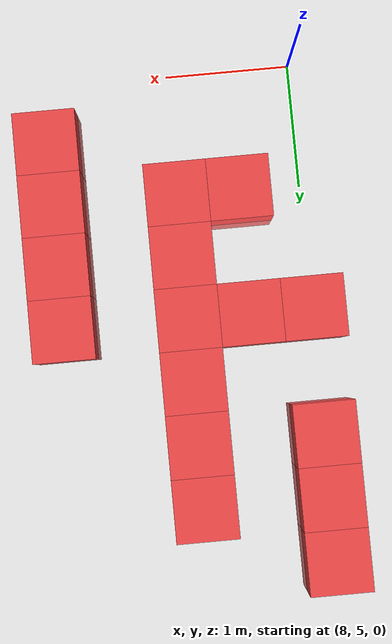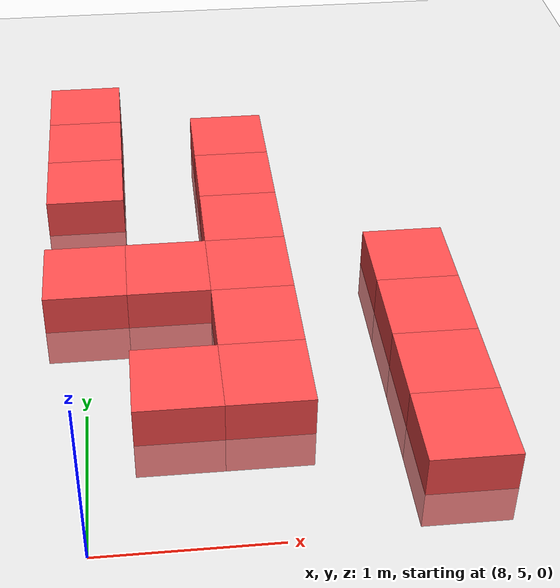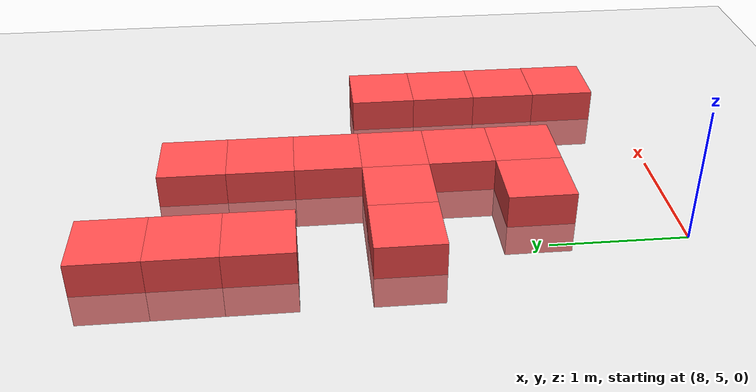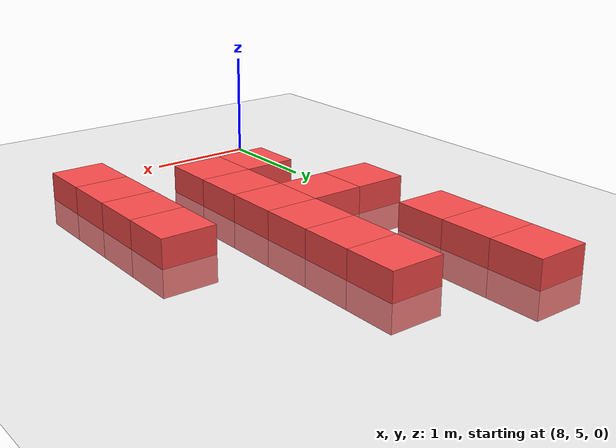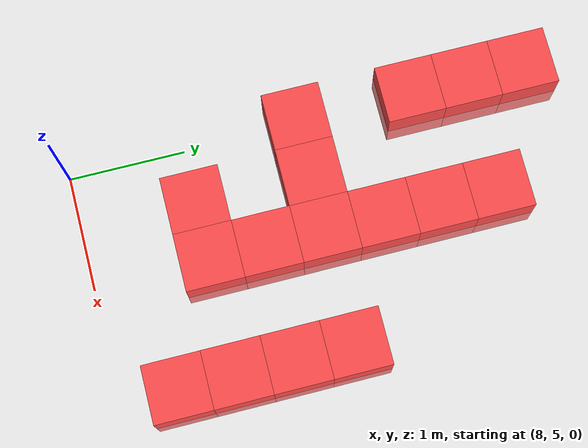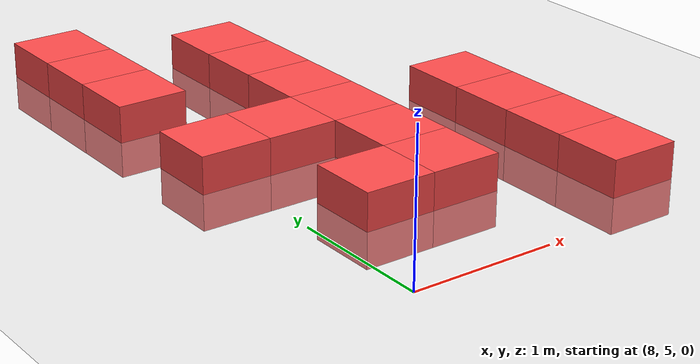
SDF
<sdf version="1.6">
 <world name="default">
  <model name="ground_plane">
   <static>1</static>
   <link name="link">
    <collision name="collision">
     <geometry><plane><normal>0 0 1</normal><size>100 100</size></plane></geometry>
     <surface><friction><ode><mu>100</mu><mu2>50</mu2></ode></friction></surface>
    </collision>
    <visual name="visual">
     <cast_shadows>0</cast_shadows>
     <geometry><plane><normal>0 0 1</normal><size>100 100</size></plane></geometry>
     <material>
      <script><uri>file://media/materials/scripts/gazebo.material</uri><name>Gazebo/Grey</name></script>
     </material>
    </visual>
   </link>
  </model>
  <model name="Box_Red_414">
   <link name="link_0">
    <inertial>
     <mass>1</mass>
     <inertia>
      <ixx>0.166667</ixx>
      <ixy>0</ixy>
      <ixz>0</ixz>
      <iyy>0.166667</iyy>
      <iyz>0</iyz>
      <izz>0.166667</izz>
     </inertia>
    </inertial>
    <visual name="visual">
     <geometry><box><size>0.5 0.5 0.5</size></box></geometry>
     <material>
      <lighting>1</lighting>
      <script><uri>file://media/materials/scripts/gazebo.material</uri><name>Gazebo/Grey</name></script>
      <ambient>1 0.3 0.3 1</ambient>
      <diffuse>0.7 0.7 0.7 1</diffuse>
      <specular>0.01 0.01 0.01 1</specular>
      <emissive>0 0 0 1</emissive>
      <shader type="vertex"><normal_map>__default__</normal_map></shader>
     </material>
    </visual>
    <collision name="collision">
     <geometry><box><size>0.5 0.5 0.5</size></box></geometry>
     <surface>
      <friction>
       <ode><mu>1</mu><mu2>1</mu2><fdir1>0 0 0</fdir1><slip1>0</slip1><slip2>0</slip2></ode>
       <torsional>
        <coefficient>1</coefficient>
        <patch_radius>0</patch_radius>
        <surface_radius>0</surface_radius>
        <use_patch_radius>1</use_patch_radius>
        <ode><slip>0</slip></ode>
       </torsional>
      </friction>
      <bounce><restitution_coefficient>0</restitution_coefficient><threshold>1e+06</threshold></bounce>
      <contact>
       <collide_without_contact>0</collide_without_contact>
       <collide_without_contact_bitmask>1</collide_without_contact_bitmask>
       <collide_bitmask>1</collide_bitmask>
       <ode>
        <soft_cfm>0</soft_cfm>
        <soft_erp>0.2</soft_erp>
        <kp>1e+13</kp>
        <kd>1</kd>
        <max_vel>0.01</max_vel>
        <min_depth>0</min_depth>
       </ode>
       <bullet>
        <split_impulse>1</split_impulse>
        <split_impulse_penetration_threshold>-0.01</split_impulse_penetration_threshold>
        <soft_cfm>0</soft_cfm>
        <soft_erp>0.2</soft_erp>
        <kp>1e+13</kp>
        <kd>1</kd>
       </bullet>
      </contact>
     </surface>
    </collision>
   </link>
   <static>0</static>
   <pose>8.000 7.000 0.000 0 0 0</pose>
  </model>
  <model name="Box_Red_416">
   <link name="link_0">
    <inertial>
     <mass>1</mass>
     <inertia>
      <ixx>0.166667</ixx>
      <ixy>0</ixy>
      <ixz>0</ixz>
      <iyy>0.166667</iyy>
      <iyz>0</iyz>
      <izz>0.166667</izz>
     </inertia>
    </inertial>
    <visual name="visual">
     <geometry><box><size>0.5 0.5 0.5</size></box></geometry>
     <material>
      <lighting>1</lighting>
      <script><uri>file://media/materials/scripts/gazebo.material</uri><name>Gazebo/Grey</name></script>
      <ambient>1 0.3 0.3 1</ambient>
      <diffuse>0.7 0.7 0.7 1</diffuse>
      <specular>0.01 0.01 0.01 1</specular>
      <emissive>0 0 0 1</emissive>
      <shader type="vertex"><normal_map>__default__</normal_map></shader>
     </material>
    </visual>
    <collision name="collision">
     <geometry><box><size>0.5 0.5 0.5</size></box></geometry>
     <surface>
      <friction>
       <ode><mu>1</mu><mu2>1</mu2><fdir1>0 0 0</fdir1><slip1>0</slip1><slip2>0</slip2></ode>
       <torsional>
        <coefficient>1</coefficient>
        <patch_radius>0</patch_radius>
        <surface_radius>0</surface_radius>
        <use_patch_radius>1</use_patch_radius>
        <ode><slip>0</slip></ode>
       </torsional>
      </friction>
      <bounce><restitution_coefficient>0</restitution_coefficient><threshold>1e+06</threshold></bounce>
      <contact>
       <collide_without_contact>0</collide_without_contact>
       <collide_without_contact_bitmask>1</collide_without_contact_bitmask>
       <collide_bitmask>1</collide_bitmask>
       <ode>
        <soft_cfm>0</soft_cfm>
        <soft_erp>0.2</soft_erp>
        <kp>1e+13</kp>
        <kd>1</kd>
        <max_vel>0.01</max_vel>
        <min_depth>0</min_depth>
       </ode>
       <bullet>
        <split_impulse>1</split_impulse>
        <split_impulse_penetration_threshold>-0.01</split_impulse_penetration_threshold>
        <soft_cfm>0</soft_cfm>
        <soft_erp>0.2</soft_erp>
        <kp>1e+13</kp>
        <kd>1</kd>
       </bullet>
      </contact>
     </surface>
    </collision>
   </link>
   <static>0</static>
   <pose>8.000 8.000 0.000 0 0 0</pose>
  </model>
  <model name="Box_Red_417">
   <link name="link_0">
    <inertial>
     <mass>1</mass>
     <inertia>
      <ixx>0.166667</ixx>
      <ixy>0</ixy>
      <ixz>0</ixz>
      <iyy>0.166667</iyy>
      <iyz>0</iyz>
      <izz>0.166667</izz>
     </inertia>
    </inertial>
    <visual name="visual">
     <geometry><box><size>0.5 0.5 0.5</size></box></geometry>
     <material>
      <lighting>1</lighting>
      <script><uri>file://media/materials/scripts/gazebo.material</uri><name>Gazebo/Grey</name></script>
      <ambient>1 0.3 0.3 1</ambient>
      <diffuse>0.7 0.7 0.7 1</diffuse>
      <specular>0.01 0.01 0.01 1</specular>
      <emissive>0 0 0 1</emissive>
      <shader type="vertex"><normal_map>__default__</normal_map></shader>
     </material>
    </visual>
    <collision name="collision">
     <geometry><box><size>0.5 0.5 0.5</size></box></geometry>
     <surface>
      <friction>
       <ode><mu>1</mu><mu2>1</mu2><fdir1>0 0 0</fdir1><slip1>0</slip1><slip2>0</slip2></ode>
       <torsional>
        <coefficient>1</coefficient>
        <patch_radius>0</patch_radius>
        <surface_radius>0</surface_radius>
        <use_patch_radius>1</use_patch_radius>
        <ode><slip>0</slip></ode>
       </torsional>
      </friction>
      <bounce><restitution_coefficient>0</restitution_coefficient><threshold>1e+06</threshold></bounce>
      <contact>
       <collide_without_contact>0</collide_without_contact>
       <collide_without_contact_bitmask>1</collide_without_contact_bitmask>
       <collide_bitmask>1</collide_bitmask>
       <ode>
        <soft_cfm>0</soft_cfm>
        <soft_erp>0.2</soft_erp>
        <kp>1e+13</kp>
        <kd>1</kd>
        <max_vel>0.01</max_vel>
        <min_depth>0</min_depth>
       </ode>
       <bullet>
        <split_impulse>1</split_impulse>
        <split_impulse_penetration_threshold>-0.01</split_impulse_penetration_threshold>
        <soft_cfm>0</soft_cfm>
        <soft_erp>0.2</soft_erp>
        <kp>1e+13</kp>
        <kd>1</kd>
       </bullet>
      </contact>
     </surface>
    </collision>
   </link>
   <static>0</static>
   <pose>8.000 8.500 0.000 0 0 0</pose>
  </model>
  <model name="Box_Red_418">
   <link name="link_0">
    <inertial>
     <mass>1</mass>
     <inertia>
      <ixx>0.166667</ixx>
      <ixy>0</ixy>
      <ixz>0</ixz>
      <iyy>0.166667</iyy>
      <iyz>0</iyz>
      <izz>0.166667</izz>
     </inertia>
    </inertial>
    <visual name="visual">
     <geometry><box><size>0.5 0.5 0.5</size></box></geometry>
     <material>
      <lighting>1</lighting>
      <script><uri>file://media/materials/scripts/gazebo.material</uri><name>Gazebo/Grey</name></script>
      <ambient>1 0.3 0.3 1</ambient>
      <diffuse>0.7 0.7 0.7 1</diffuse>
      <specular>0.01 0.01 0.01 1</specular>
      <emissive>0 0 0 1</emissive>
      <shader type="vertex"><normal_map>__default__</normal_map></shader>
     </material>
    </visual>
    <collision name="collision">
     <geometry><box><size>0.5 0.5 0.5</size></box></geometry>
     <surface>
      <friction>
       <ode><mu>1</mu><mu2>1</mu2><fdir1>0 0 0</fdir1><slip1>0</slip1><slip2>0</slip2></ode>
       <torsional>
        <coefficient>1</coefficient>
        <patch_radius>0</patch_radius>
        <surface_radius>0</surface_radius>
        <use_patch_radius>1</use_patch_radius>
        <ode><slip>0</slip></ode>
       </torsional>
      </friction>
      <bounce><restitution_coefficient>0</restitution_coefficient><threshold>1e+06</threshold></bounce>
      <contact>
       <collide_without_contact>0</collide_without_contact>
       <collide_without_contact_bitmask>1</collide_without_contact_bitmask>
       <collide_bitmask>1</collide_bitmask>
       <ode>
        <soft_cfm>0</soft_cfm>
        <soft_erp>0.2</soft_erp>
        <kp>1e+13</kp>
        <kd>1</kd>
        <max_vel>0.01</max_vel>
        <min_depth>0</min_depth>
       </ode>
       <bullet>
        <split_impulse>1</split_impulse>
        <split_impulse_penetration_threshold>-0.01</split_impulse_penetration_threshold>
        <soft_cfm>0</soft_cfm>
        <soft_erp>0.2</soft_erp>
        <kp>1e+13</kp>
        <kd>1</kd>
       </bullet>
      </contact>
     </surface>
    </collision>
   </link>
   <static>0</static>
   <pose>8.000 9.000 0.000 0 0 0</pose>
  </model>
  <model name="Box_Red_437">
   <link name="link_0">
    <inertial>
     <mass>1</mass>
     <inertia>
      <ixx>0.166667</ixx>
      <ixy>0</ixy>
      <ixz>0</ixz>
      <iyy>0.166667</iyy>
      <iyz>0</iyz>
      <izz>0.166667</izz>
     </inertia>
    </inertial>
    <visual name="visual">
     <geometry><box><size>0.5 0.5 0.5</size></box></geometry>
     <material>
      <lighting>1</lighting>
      <script><uri>file://media/materials/scripts/gazebo.material</uri><name>Gazebo/Grey</name></script>
      <ambient>1 0.3 0.3 1</ambient>
      <diffuse>0.7 0.7 0.7 1</diffuse>
      <specular>0.01 0.01 0.01 1</specular>
      <emissive>0 0 0 1</emissive>
      <shader type="vertex"><normal_map>__default__</normal_map></shader>
     </material>
    </visual>
    <collision name="collision">
     <geometry><box><size>0.5 0.5 0.5</size></box></geometry>
     <surface>
      <friction>
       <ode><mu>1</mu><mu2>1</mu2><fdir1>0 0 0</fdir1><slip1>0</slip1><slip2>0</slip2></ode>
       <torsional>
        <coefficient>1</coefficient>
        <patch_radius>0</patch_radius>
        <surface_radius>0</surface_radius>
        <use_patch_radius>1</use_patch_radius>
        <ode><slip>0</slip></ode>
       </torsional>
      </friction>
      <bounce><restitution_coefficient>0</restitution_coefficient><threshold>1e+06</threshold></bounce>
      <contact>
       <collide_without_contact>0</collide_without_contact>
       <collide_without_contact_bitmask>1</collide_without_contact_bitmask>
       <collide_bitmask>1</collide_bitmask>
       <ode>
        <soft_cfm>0</soft_cfm>
        <soft_erp>0.2</soft_erp>
        <kp>1e+13</kp>
        <kd>1</kd>
        <max_vel>0.01</max_vel>
        <min_depth>0</min_depth>
       </ode>
       <bullet>
        <split_impulse>1</split_impulse>
        <split_impulse_penetration_threshold>-0.01</split_impulse_penetration_threshold>
        <soft_cfm>0</soft_cfm>
        <soft_erp>0.2</soft_erp>
        <kp>1e+13</kp>
        <kd>1</kd>
       </bullet>
      </contact>
     </surface>
    </collision>
   </link>
   <static>0</static>
   <pose>8.500 6.000 0.000 0 0 0</pose>
  </model>
  <model name="Box_Red_439">
   <link name="link_0">
    <inertial>
     <mass>1</mass>
     <inertia>
      <ixx>0.166667</ixx>
      <ixy>0</ixy>
      <ixz>0</ixz>
      <iyy>0.166667</iyy>
      <iyz>0</iyz>
      <izz>0.166667</izz>
     </inertia>
    </inertial>
    <visual name="visual">
     <geometry><box><size>0.5 0.5 0.5</size></box></geometry>
     <material>
      <lighting>1</lighting>
      <script><uri>file://media/materials/scripts/gazebo.material</uri><name>Gazebo/Grey</name></script>
      <ambient>1 0.3 0.3 1</ambient>
      <diffuse>0.7 0.7 0.7 1</diffuse>
      <specular>0.01 0.01 0.01 1</specular>
      <emissive>0 0 0 1</emissive>
      <shader type="vertex"><normal_map>__default__</normal_map></shader>
     </material>
    </visual>
    <collision name="collision">
     <geometry><box><size>0.5 0.5 0.5</size></box></geometry>
     <surface>
      <friction>
       <ode><mu>1</mu><mu2>1</mu2><fdir1>0 0 0</fdir1><slip1>0</slip1><slip2>0</slip2></ode>
       <torsional>
        <coefficient>1</coefficient>
        <patch_radius>0</patch_radius>
        <surface_radius>0</surface_radius>
        <use_patch_radius>1</use_patch_radius>
        <ode><slip>0</slip></ode>
       </torsional>
      </friction>
      <bounce><restitution_coefficient>0</restitution_coefficient><threshold>1e+06</threshold></bounce>
      <contact>
       <collide_without_contact>0</collide_without_contact>
       <collide_without_contact_bitmask>1</collide_without_contact_bitmask>
       <collide_bitmask>1</collide_bitmask>
       <ode>
        <soft_cfm>0</soft_cfm>
        <soft_erp>0.2</soft_erp>
        <kp>1e+13</kp>
        <kd>1</kd>
        <max_vel>0.01</max_vel>
        <min_depth>0</min_depth>
       </ode>
       <bullet>
        <split_impulse>1</split_impulse>
        <split_impulse_penetration_threshold>-0.01</split_impulse_penetration_threshold>
        <soft_cfm>0</soft_cfm>
        <soft_erp>0.2</soft_erp>
        <kp>1e+13</kp>
        <kd>1</kd>
       </bullet>
      </contact>
     </surface>
    </collision>
   </link>
   <static>0</static>
   <pose>8.500 7.000 0.000 0 0 0</pose>
  </model>
  <model name="Box_Red_462">
   <link name="link_0">
    <inertial>
     <mass>1</mass>
     <inertia>
      <ixx>0.166667</ixx>
      <ixy>0</ixy>
      <ixz>0</ixz>
      <iyy>0.166667</iyy>
      <iyz>0</iyz>
      <izz>0.166667</izz>
     </inertia>
    </inertial>
    <visual name="visual">
     <geometry><box><size>0.5 0.5 0.5</size></box></geometry>
     <material>
      <lighting>1</lighting>
      <script><uri>file://media/materials/scripts/gazebo.material</uri><name>Gazebo/Grey</name></script>
      <ambient>1 0.3 0.3 1</ambient>
      <diffuse>0.7 0.7 0.7 1</diffuse>
      <specular>0.01 0.01 0.01 1</specular>
      <emissive>0 0 0 1</emissive>
      <shader type="vertex"><normal_map>__default__</normal_map></shader>
     </material>
    </visual>
    <collision name="collision">
     <geometry><box><size>0.5 0.5 0.5</size></box></geometry>
     <surface>
      <friction>
       <ode><mu>1</mu><mu2>1</mu2><fdir1>0 0 0</fdir1><slip1>0</slip1><slip2>0</slip2></ode>
       <torsional>
        <coefficient>1</coefficient>
        <patch_radius>0</patch_radius>
        <surface_radius>0</surface_radius>
        <use_patch_radius>1</use_patch_radius>
        <ode><slip>0</slip></ode>
       </torsional>
      </friction>
      <bounce><restitution_coefficient>0</restitution_coefficient><threshold>1e+06</threshold></bounce>
      <contact>
       <collide_without_contact>0</collide_without_contact>
       <collide_without_contact_bitmask>1</collide_without_contact_bitmask>
       <collide_bitmask>1</collide_bitmask>
       <ode>
        <soft_cfm>0</soft_cfm>
        <soft_erp>0.2</soft_erp>
        <kp>1e+13</kp>
        <kd>1</kd>
        <max_vel>0.01</max_vel>
        <min_depth>0</min_depth>
       </ode>
       <bullet>
        <split_impulse>1</split_impulse>
        <split_impulse_penetration_threshold>-0.01</split_impulse_penetration_threshold>
        <soft_cfm>0</soft_cfm>
        <soft_erp>0.2</soft_erp>
        <kp>1e+13</kp>
        <kd>1</kd>
       </bullet>
      </contact>
     </surface>
    </collision>
   </link>
   <static>0</static>
   <pose>9.000 6.000 0.000 0 0 0</pose>
  </model>
  <model name="Box_Red_463">
   <link name="link_0">
    <inertial>
     <mass>1</mass>
     <inertia>
      <ixx>0.166667</ixx>
      <ixy>0</ixy>
      <ixz>0</ixz>
      <iyy>0.166667</iyy>
      <iyz>0</iyz>
      <izz>0.166667</izz>
     </inertia>
    </inertial>
    <visual name="visual">
     <geometry><box><size>0.5 0.5 0.5</size></box></geometry>
     <material>
      <lighting>1</lighting>
      <script><uri>file://media/materials/scripts/gazebo.material</uri><name>Gazebo/Grey</name></script>
      <ambient>1 0.3 0.3 1</ambient>
      <diffuse>0.7 0.7 0.7 1</diffuse>
      <specular>0.01 0.01 0.01 1</specular>
      <emissive>0 0 0 1</emissive>
      <shader type="vertex"><normal_map>__default__</normal_map></shader>
     </material>
    </visual>
    <collision name="collision">
     <geometry><box><size>0.5 0.5 0.5</size></box></geometry>
     <surface>
      <friction>
       <ode><mu>1</mu><mu2>1</mu2><fdir1>0 0 0</fdir1><slip1>0</slip1><slip2>0</slip2></ode>
       <torsional>
        <coefficient>1</coefficient>
        <patch_radius>0</patch_radius>
        <surface_radius>0</surface_radius>
        <use_patch_radius>1</use_patch_radius>
        <ode><slip>0</slip></ode>
       </torsional>
      </friction>
      <bounce><restitution_coefficient>0</restitution_coefficient><threshold>1e+06</threshold></bounce>
      <contact>
       <collide_without_contact>0</collide_without_contact>
       <collide_without_contact_bitmask>1</collide_without_contact_bitmask>
       <collide_bitmask>1</collide_bitmask>
       <ode>
        <soft_cfm>0</soft_cfm>
        <soft_erp>0.2</soft_erp>
        <kp>1e+13</kp>
        <kd>1</kd>
        <max_vel>0.01</max_vel>
        <min_depth>0</min_depth>
       </ode>
       <bullet>
        <split_impulse>1</split_impulse>
        <split_impulse_penetration_threshold>-0.01</split_impulse_penetration_threshold>
        <soft_cfm>0</soft_cfm>
        <soft_erp>0.2</soft_erp>
        <kp>1e+13</kp>
        <kd>1</kd>
       </bullet>
      </contact>
     </surface>
    </collision>
   </link>
   <static>0</static>
   <pose>9.000 6.500 0.000 0 0 0</pose>
  </model>
  <model name="Box_Red_464">
   <link name="link_0">
    <inertial>
     <mass>1</mass>
     <inertia>
      <ixx>0.166667</ixx>
      <ixy>0</ixy>
      <ixz>0</ixz>
      <iyy>0.166667</iyy>
      <iyz>0</iyz>
      <izz>0.166667</izz>
     </inertia>
    </inertial>
    <visual name="visual">
     <geometry><box><size>0.5 0.5 0.5</size></box></geometry>
     <material>
      <lighting>1</lighting>
      <script><uri>file://media/materials/scripts/gazebo.material</uri><name>Gazebo/Grey</name></script>
      <ambient>1 0.3 0.3 1</ambient>
      <diffuse>0.7 0.7 0.7 1</diffuse>
      <specular>0.01 0.01 0.01 1</specular>
      <emissive>0 0 0 1</emissive>
      <shader type="vertex"><normal_map>__default__</normal_map></shader>
     </material>
    </visual>
    <collision name="collision">
     <geometry><box><size>0.5 0.5 0.5</size></box></geometry>
     <surface>
      <friction>
       <ode><mu>1</mu><mu2>1</mu2><fdir1>0 0 0</fdir1><slip1>0</slip1><slip2>0</slip2></ode>
       <torsional>
        <coefficient>1</coefficient>
        <patch_radius>0</patch_radius>
        <surface_radius>0</surface_radius>
        <use_patch_radius>1</use_patch_radius>
        <ode><slip>0</slip></ode>
       </torsional>
      </friction>
      <bounce><restitution_coefficient>0</restitution_coefficient><threshold>1e+06</threshold></bounce>
      <contact>
       <collide_without_contact>0</collide_without_contact>
       <collide_without_contact_bitmask>1</collide_without_contact_bitmask>
       <collide_bitmask>1</collide_bitmask>
       <ode>
        <soft_cfm>0</soft_cfm>
        <soft_erp>0.2</soft_erp>
        <kp>1e+13</kp>
        <kd>1</kd>
        <max_vel>0.01</max_vel>
        <min_depth>0</min_depth>
       </ode>
       <bullet>
        <split_impulse>1</split_impulse>
        <split_impulse_penetration_threshold>-0.01</split_impulse_penetration_threshold>
        <soft_cfm>0</soft_cfm>
        <soft_erp>0.2</soft_erp>
        <kp>1e+13</kp>
        <kd>1</kd>
       </bullet>
      </contact>
     </surface>
    </collision>
   </link>
   <static>0</static>
   <pose>9.000 7.000 0.000 0 0 0</pose>
  </model>
  <model name="Box_Red_465">
   <link name="link_0">
    <inertial>
     <mass>1</mass>
     <inertia>
      <ixx>0.166667</ixx>
      <ixy>0</ixy>
      <ixz>0</ixz>
      <iyy>0.166667</iyy>
      <iyz>0</iyz>
      <izz>0.166667</izz>
     </inertia>
    </inertial>
    <visual name="visual">
     <geometry><box><size>0.5 0.5 0.5</size></box></geometry>
     <material>
      <lighting>1</lighting>
      <script><uri>file://media/materials/scripts/gazebo.material</uri><name>Gazebo/Grey</name></script>
      <ambient>1 0.3 0.3 1</ambient>
      <diffuse>0.7 0.7 0.7 1</diffuse>
      <specular>0.01 0.01 0.01 1</specular>
      <emissive>0 0 0 1</emissive>
      <shader type="vertex"><normal_map>__default__</normal_map></shader>
     </material>
    </visual>
    <collision name="collision">
     <geometry><box><size>0.5 0.5 0.5</size></box></geometry>
     <surface>
      <friction>
       <ode><mu>1</mu><mu2>1</mu2><fdir1>0 0 0</fdir1><slip1>0</slip1><slip2>0</slip2></ode>
       <torsional>
        <coefficient>1</coefficient>
        <patch_radius>0</patch_radius>
        <surface_radius>0</surface_radius>
        <use_patch_radius>1</use_patch_radius>
        <ode><slip>0</slip></ode>
       </torsional>
      </friction>
      <bounce><restitution_coefficient>0</restitution_coefficient><threshold>1e+06</threshold></bounce>
      <contact>
       <collide_without_contact>0</collide_without_contact>
       <collide_without_contact_bitmask>1</collide_without_contact_bitmask>
       <collide_bitmask>1</collide_bitmask>
       <ode>
        <soft_cfm>0</soft_cfm>
        <soft_erp>0.2</soft_erp>
        <kp>1e+13</kp>
        <kd>1</kd>
        <max_vel>0.01</max_vel>
        <min_depth>0</min_depth>
       </ode>
       <bullet>
        <split_impulse>1</split_impulse>
        <split_impulse_penetration_threshold>-0.01</split_impulse_penetration_threshold>
        <soft_cfm>0</soft_cfm>
        <soft_erp>0.2</soft_erp>
        <kp>1e+13</kp>
        <kd>1</kd>
       </bullet>
      </contact>
     </surface>
    </collision>
   </link>
   <static>0</static>
   <pose>9.000 7.500 0.000 0 0 0</pose>
  </model>
  <model name="Box_Red_466">
   <link name="link_0">
    <inertial>
     <mass>1</mass>
     <inertia>
      <ixx>0.166667</ixx>
      <ixy>0</ixy>
      <ixz>0</ixz>
      <iyy>0.166667</iyy>
      <iyz>0</iyz>
      <izz>0.166667</izz>
     </inertia>
    </inertial>
    <visual name="visual">
     <geometry><box><size>0.5 0.5 0.5</size></box></geometry>
     <material>
      <lighting>1</lighting>
      <script><uri>file://media/materials/scripts/gazebo.material</uri><name>Gazebo/Grey</name></script>
      <ambient>1 0.3 0.3 1</ambient>
      <diffuse>0.7 0.7 0.7 1</diffuse>
      <specular>0.01 0.01 0.01 1</specular>
      <emissive>0 0 0 1</emissive>
      <shader type="vertex"><normal_map>__default__</normal_map></shader>
     </material>
    </visual>
    <collision name="collision">
     <geometry><box><size>0.5 0.5 0.5</size></box></geometry>
     <surface>
      <friction>
       <ode><mu>1</mu><mu2>1</mu2><fdir1>0 0 0</fdir1><slip1>0</slip1><slip2>0</slip2></ode>
       <torsional>
        <coefficient>1</coefficient>
        <patch_radius>0</patch_radius>
        <surface_radius>0</surface_radius>
        <use_patch_radius>1</use_patch_radius>
        <ode><slip>0</slip></ode>
       </torsional>
      </friction>
      <bounce><restitution_coefficient>0</restitution_coefficient><threshold>1e+06</threshold></bounce>
      <contact>
       <collide_without_contact>0</collide_without_contact>
       <collide_without_contact_bitmask>1</collide_without_contact_bitmask>
       <collide_bitmask>1</collide_bitmask>
       <ode>
        <soft_cfm>0</soft_cfm>
        <soft_erp>0.2</soft_erp>
        <kp>1e+13</kp>
        <kd>1</kd>
        <max_vel>0.01</max_vel>
        <min_depth>0</min_depth>
       </ode>
       <bullet>
        <split_impulse>1</split_impulse>
        <split_impulse_penetration_threshold>-0.01</split_impulse_penetration_threshold>
        <soft_cfm>0</soft_cfm>
        <soft_erp>0.2</soft_erp>
        <kp>1e+13</kp>
        <kd>1</kd>
       </bullet>
      </contact>
     </surface>
    </collision>
   </link>
   <static>0</static>
   <pose>9.000 8.000 0.000 0 0 0</pose>
  </model>
  <model name="Box_Red_467">
   <link name="link_0">
    <inertial>
     <mass>1</mass>
     <inertia>
      <ixx>0.166667</ixx>
      <ixy>0</ixy>
      <ixz>0</ixz>
      <iyy>0.166667</iyy>
      <iyz>0</iyz>
      <izz>0.166667</izz>
     </inertia>
    </inertial>
    <visual name="visual">
     <geometry><box><size>0.5 0.5 0.5</size></box></geometry>
     <material>
      <lighting>1</lighting>
      <script><uri>file://media/materials/scripts/gazebo.material</uri><name>Gazebo/Grey</name></script>
      <ambient>1 0.3 0.3 1</ambient>
      <diffuse>0.7 0.7 0.7 1</diffuse>
      <specular>0.01 0.01 0.01 1</specular>
      <emissive>0 0 0 1</emissive>
      <shader type="vertex"><normal_map>__default__</normal_map></shader>
     </material>
    </visual>
    <collision name="collision">
     <geometry><box><size>0.5 0.5 0.5</size></box></geometry>
     <surface>
      <friction>
       <ode><mu>1</mu><mu2>1</mu2><fdir1>0 0 0</fdir1><slip1>0</slip1><slip2>0</slip2></ode>
       <torsional>
        <coefficient>1</coefficient>
        <patch_radius>0</patch_radius>
        <surface_radius>0</surface_radius>
        <use_patch_radius>1</use_patch_radius>
        <ode><slip>0</slip></ode>
       </torsional>
      </friction>
      <bounce><restitution_coefficient>0</restitution_coefficient><threshold>1e+06</threshold></bounce>
      <contact>
       <collide_without_contact>0</collide_without_contact>
       <collide_without_contact_bitmask>1</collide_without_contact_bitmask>
       <collide_bitmask>1</collide_bitmask>
       <ode>
        <soft_cfm>0</soft_cfm>
        <soft_erp>0.2</soft_erp>
        <kp>1e+13</kp>
        <kd>1</kd>
        <max_vel>0.01</max_vel>
        <min_depth>0</min_depth>
       </ode>
       <bullet>
        <split_impulse>1</split_impulse>
        <split_impulse_penetration_threshold>-0.01</split_impulse_penetration_threshold>
        <soft_cfm>0</soft_cfm>
        <soft_erp>0.2</soft_erp>
        <kp>1e+13</kp>
        <kd>1</kd>
       </bullet>
      </contact>
     </surface>
    </collision>
   </link>
   <static>0</static>
   <pose>9.000 8.500 0.000 0 0 0</pose>
  </model>
  <model name="Box_Red_511">
   <link name="link_0">
    <inertial>
     <mass>1</mass>
     <inertia>
      <ixx>0.166667</ixx>
      <ixy>0</ixy>
      <ixz>0</ixz>
      <iyy>0.166667</iyy>
      <iyz>0</iyz>
      <izz>0.166667</izz>
     </inertia>
    </inertial>
    <visual name="visual">
     <geometry><box><size>0.5 0.5 0.5</size></box></geometry>
     <material>
      <lighting>1</lighting>
      <script><uri>file://media/materials/scripts/gazebo.material</uri><name>Gazebo/Grey</name></script>
      <ambient>1 0.3 0.3 1</ambient>
      <diffuse>0.7 0.7 0.7 1</diffuse>
      <specular>0.01 0.01 0.01 1</specular>
      <emissive>0 0 0 1</emissive>
      <shader type="vertex"><normal_map>__default__</normal_map></shader>
     </material>
    </visual>
    <collision name="collision">
     <geometry><box><size>0.5 0.5 0.5</size></box></geometry>
     <surface>
      <friction>
       <ode><mu>1</mu><mu2>1</mu2><fdir1>0 0 0</fdir1><slip1>0</slip1><slip2>0</slip2></ode>
       <torsional>
        <coefficient>1</coefficient>
        <patch_radius>0</patch_radius>
        <surface_radius>0</surface_radius>
        <use_patch_radius>1</use_patch_radius>
        <ode><slip>0</slip></ode>
       </torsional>
      </friction>
      <bounce><restitution_coefficient>0</restitution_coefficient><threshold>1e+06</threshold></bounce>
      <contact>
       <collide_without_contact>0</collide_without_contact>
       <collide_without_contact_bitmask>1</collide_without_contact_bitmask>
       <collide_bitmask>1</collide_bitmask>
       <ode>
        <soft_cfm>0</soft_cfm>
        <soft_erp>0.2</soft_erp>
        <kp>1e+13</kp>
        <kd>1</kd>
        <max_vel>0.01</max_vel>
        <min_depth>0</min_depth>
       </ode>
       <bullet>
        <split_impulse>1</split_impulse>
        <split_impulse_penetration_threshold>-0.01</split_impulse_penetration_threshold>
        <soft_cfm>0</soft_cfm>
        <soft_erp>0.2</soft_erp>
        <kp>1e+13</kp>
        <kd>1</kd>
       </bullet>
      </contact>
     </surface>
    </collision>
   </link>
   <static>0</static>
   <pose>10.000 5.500 0.000 0 0 0</pose>
  </model>
  <model name="Box_Red_512">
   <link name="link_0">
    <inertial>
     <mass>1</mass>
     <inertia>
      <ixx>0.166667</ixx>
      <ixy>0</ixy>
      <ixz>0</ixz>
      <iyy>0.166667</iyy>
      <iyz>0</iyz>
      <izz>0.166667</izz>
     </inertia>
    </inertial>
    <visual name="visual">
     <geometry><box><size>0.5 0.5 0.5</size></box></geometry>
     <material>
      <lighting>1</lighting>
      <script><uri>file://media/materials/scripts/gazebo.material</uri><name>Gazebo/Grey</name></script>
      <ambient>1 0.3 0.3 1</ambient>
      <diffuse>0.7 0.7 0.7 1</diffuse>
      <specular>0.01 0.01 0.01 1</specular>
      <emissive>0 0 0 1</emissive>
      <shader type="vertex"><normal_map>__default__</normal_map></shader>
     </material>
    </visual>
    <collision name="collision">
     <geometry><box><size>0.5 0.5 0.5</size></box></geometry>
     <surface>
      <friction>
       <ode><mu>1</mu><mu2>1</mu2><fdir1>0 0 0</fdir1><slip1>0</slip1><slip2>0</slip2></ode>
       <torsional>
        <coefficient>1</coefficient>
        <patch_radius>0</patch_radius>
        <surface_radius>0</surface_radius>
        <use_patch_radius>1</use_patch_radius>
        <ode><slip>0</slip></ode>
       </torsional>
      </friction>
      <bounce><restitution_coefficient>0</restitution_coefficient><threshold>1e+06</threshold></bounce>
      <contact>
       <collide_without_contact>0</collide_without_contact>
       <collide_without_contact_bitmask>1</collide_without_contact_bitmask>
       <collide_bitmask>1</collide_bitmask>
       <ode>
        <soft_cfm>0</soft_cfm>
        <soft_erp>0.2</soft_erp>
        <kp>1e+13</kp>
        <kd>1</kd>
        <max_vel>0.01</max_vel>
        <min_depth>0</min_depth>
       </ode>
       <bullet>
        <split_impulse>1</split_impulse>
        <split_impulse_penetration_threshold>-0.01</split_impulse_penetration_threshold>
        <soft_cfm>0</soft_cfm>
        <soft_erp>0.2</soft_erp>
        <kp>1e+13</kp>
        <kd>1</kd>
       </bullet>
      </contact>
     </surface>
    </collision>
   </link>
   <static>0</static>
   <pose>10.000 6.000 0.000 0 0 0</pose>
  </model>
  <model name="Box_Red_513">
   <link name="link_0">
    <inertial>
     <mass>1</mass>
     <inertia>
      <ixx>0.166667</ixx>
      <ixy>0</ixy>
      <ixz>0</ixz>
      <iyy>0.166667</iyy>
      <iyz>0</iyz>
      <izz>0.166667</izz>
     </inertia>
    </inertial>
    <visual name="visual">
     <geometry><box><size>0.5 0.5 0.5</size></box></geometry>
     <material>
      <lighting>1</lighting>
      <script><uri>file://media/materials/scripts/gazebo.material</uri><name>Gazebo/Grey</name></script>
      <ambient>1 0.3 0.3 1</ambient>
      <diffuse>0.7 0.7 0.7 1</diffuse>
      <specular>0.01 0.01 0.01 1</specular>
      <emissive>0 0 0 1</emissive>
      <shader type="vertex"><normal_map>__default__</normal_map></shader>
     </material>
    </visual>
    <collision name="collision">
     <geometry><box><size>0.5 0.5 0.5</size></box></geometry>
     <surface>
      <friction>
       <ode><mu>1</mu><mu2>1</mu2><fdir1>0 0 0</fdir1><slip1>0</slip1><slip2>0</slip2></ode>
       <torsional>
        <coefficient>1</coefficient>
        <patch_radius>0</patch_radius>
        <surface_radius>0</surface_radius>
        <use_patch_radius>1</use_patch_radius>
        <ode><slip>0</slip></ode>
       </torsional>
      </friction>
      <bounce><restitution_coefficient>0</restitution_coefficient><threshold>1e+06</threshold></bounce>
      <contact>
       <collide_without_contact>0</collide_without_contact>
       <collide_without_contact_bitmask>1</collide_without_contact_bitmask>
       <collide_bitmask>1</collide_bitmask>
       <ode>
        <soft_cfm>0</soft_cfm>
        <soft_erp>0.2</soft_erp>
        <kp>1e+13</kp>
        <kd>1</kd>
        <max_vel>0.01</max_vel>
        <min_depth>0</min_depth>
       </ode>
       <bullet>
        <split_impulse>1</split_impulse>
        <split_impulse_penetration_threshold>-0.01</split_impulse_penetration_threshold>
        <soft_cfm>0</soft_cfm>
        <soft_erp>0.2</soft_erp>
        <kp>1e+13</kp>
        <kd>1</kd>
       </bullet>
      </contact>
     </surface>
    </collision>
   </link>
   <static>0</static>
   <pose>10.000 6.500 0.000 0 0 0</pose>
  </model>
  <model name="Box_Red_514">
   <link name="link_0">
    <inertial>
     <mass>1</mass>
     <inertia>
      <ixx>0.166667</ixx>
      <ixy>0</ixy>
      <ixz>0</ixz>
      <iyy>0.166667</iyy>
      <iyz>0</iyz>
      <izz>0.166667</izz>
     </inertia>
    </inertial>
    <visual name="visual">
     <geometry><box><size>0.5 0.5 0.5</size></box></geometry>
     <material>
      <lighting>1</lighting>
      <script><uri>file://media/materials/scripts/gazebo.material</uri><name>Gazebo/Grey</name></script>
      <ambient>1 0.3 0.3 1</ambient>
      <diffuse>0.7 0.7 0.7 1</diffuse>
      <specular>0.01 0.01 0.01 1</specular>
      <emissive>0 0 0 1</emissive>
      <shader type="vertex"><normal_map>__default__</normal_map></shader>
     </material>
    </visual>
    <collision name="collision">
     <geometry><box><size>0.5 0.5 0.5</size></box></geometry>
     <surface>
      <friction>
       <ode><mu>1</mu><mu2>1</mu2><fdir1>0 0 0</fdir1><slip1>0</slip1><slip2>0</slip2></ode>
       <torsional>
        <coefficient>1</coefficient>
        <patch_radius>0</patch_radius>
        <surface_radius>0</surface_radius>
        <use_patch_radius>1</use_patch_radius>
        <ode><slip>0</slip></ode>
       </torsional>
      </friction>
      <bounce><restitution_coefficient>0</restitution_coefficient><threshold>1e+06</threshold></bounce>
      <contact>
       <collide_without_contact>0</collide_without_contact>
       <collide_without_contact_bitmask>1</collide_without_contact_bitmask>
       <collide_bitmask>1</collide_bitmask>
       <ode>
        <soft_cfm>0</soft_cfm>
        <soft_erp>0.2</soft_erp>
        <kp>1e+13</kp>
        <kd>1</kd>
        <max_vel>0.01</max_vel>
        <min_depth>0</min_depth>
       </ode>
       <bullet>
        <split_impulse>1</split_impulse>
        <split_impulse_penetration_threshold>-0.01</split_impulse_penetration_threshold>
        <soft_cfm>0</soft_cfm>
        <soft_erp>0.2</soft_erp>
        <kp>1e+13</kp>
        <kd>1</kd>
       </bullet>
      </contact>
     </surface>
    </collision>
   </link>
   <static>0</static>
   <pose>10.000 7.000 0.000 0 0 0</pose>
  </model>
 </world>
</sdf>
